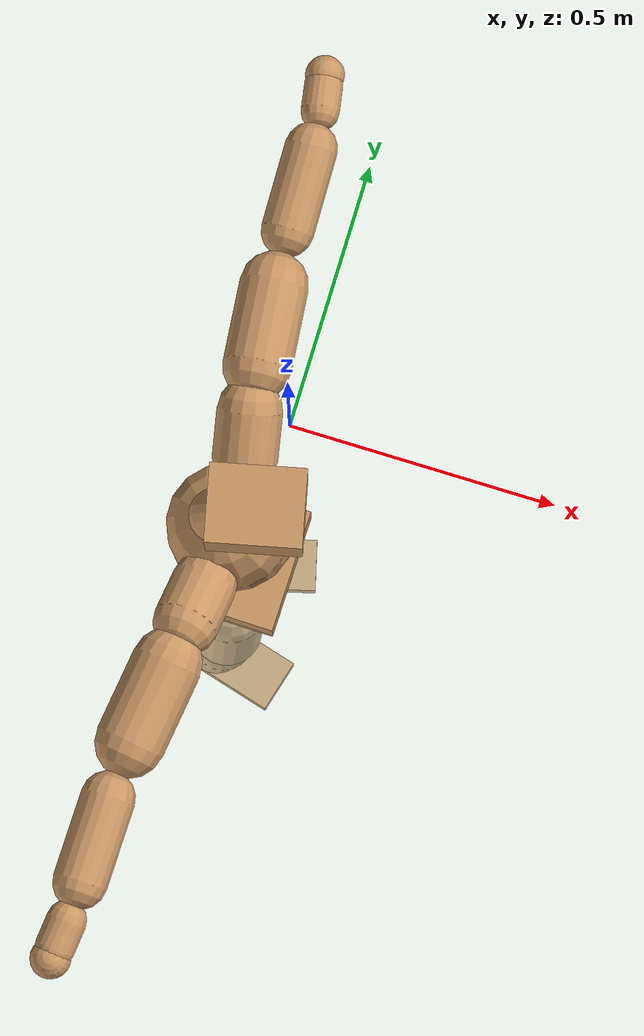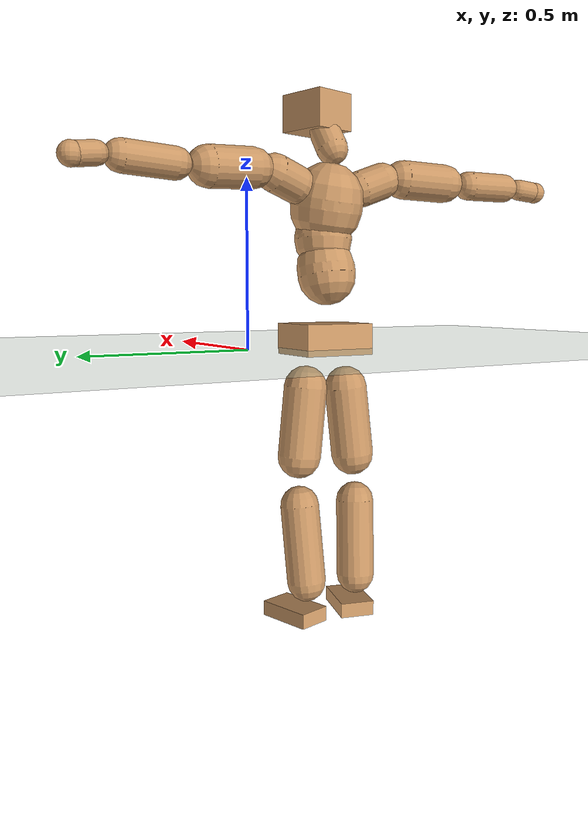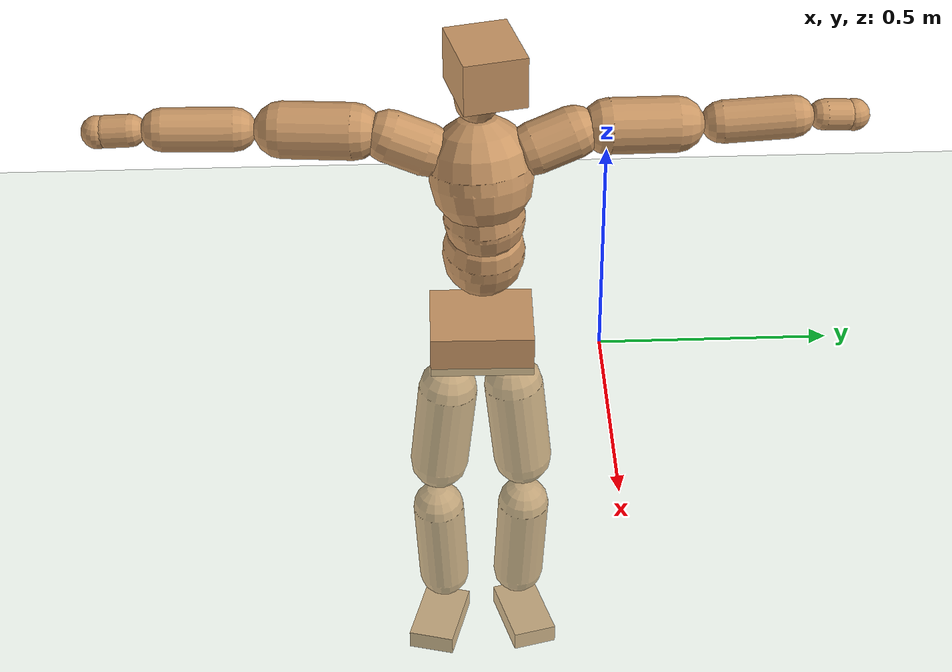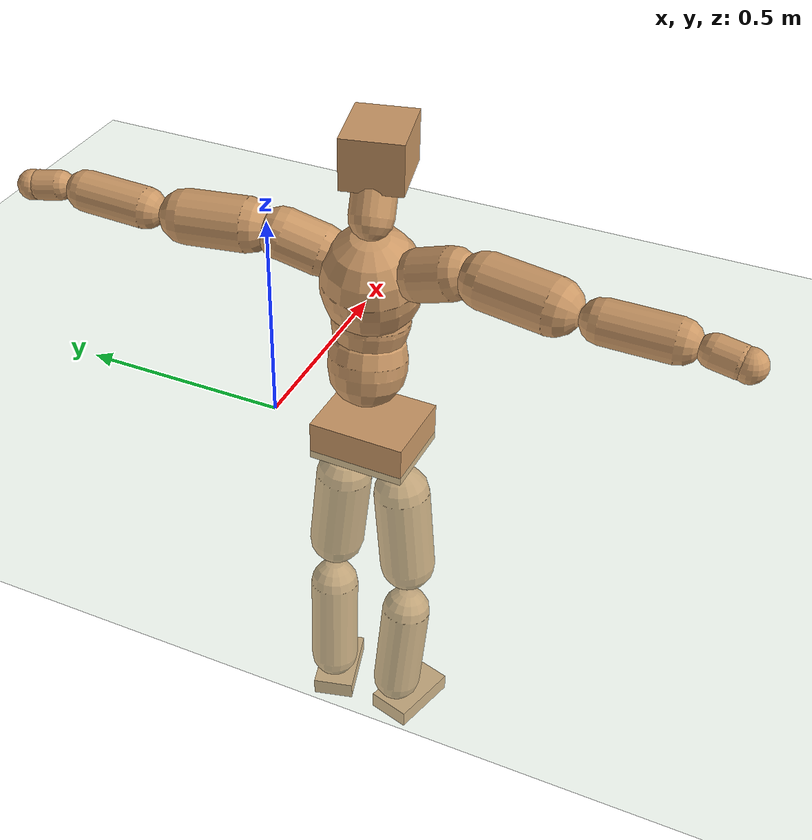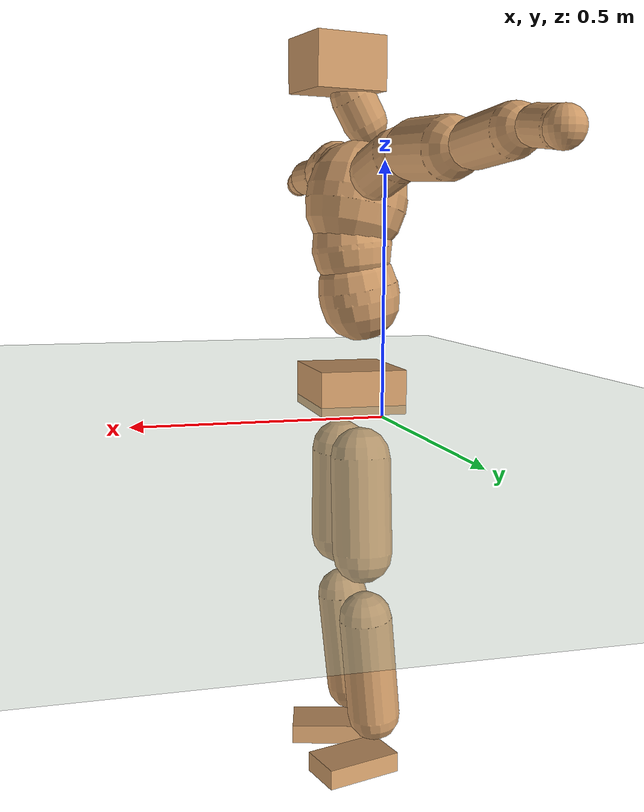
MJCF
<mujoco model="humanoid">
  <compiler coordinate="local" angle="radian"/>
  <default>
    <joint damping="0.0" armature="0.01" stiffness="0.0" limited="true"/>
    <geom conaffinity="1" condim="3" contype="7" margin="0.001" rgba="0.8 0.6 .4 1"/>
  </default>
  <asset>
    <texture type="skybox" builtin="gradient" rgb1=".4 .5 .6" rgb2="0 0 0" width="100" height="100"/>
    <texture builtin="flat" height="1278" mark="cross" markrgb="1 1 1" name="texgeom" random="0.01" rgb1="0.8 0.6 0.4" rgb2="0.8 0.6 0.4" type="cube" width="127"/>
    <texture builtin="checker" height="100" name="texplane" rgb1="0 0 0" rgb2="0.8 0.8 0.8" type="2d" width="100"/>
    <material name="MatPlane" reflectance="0.5" shininess="1" specular="1" texrepeat="60 60" texture="texplane"/>
    <material name="geom" texture="texgeom" texuniform="true"/>
  </asset>
  <worldbody>
    <light cutoff="100" diffuse="1 1 1" dir="-0 0 -1.3" directional="true" exponent="1" pos="0 0 1.3" specular=".1 .1 .1"/>
    <geom conaffinity="1" condim="3" name="floor" pos="0 0 0" rgba="0.8 0.9 0.8 1" size="100 100 .2" type="plane" material="MatPlane"/>
    <body name="Pelvis" pos="0.0004 -0.2593 0.0342">
      <freejoint name="Pelvis"/>
      <geom type="box" contype="1" conaffinity="1" density="500" pos="-0.0116 0.0002 -0.0079" size="0.0942 0.1128 0.0476" quat="1.0000 0.0000 0.0000 -0.0087" name="Pelvis"/>
      <body name="L_Hip" pos="-0.0153 0.0648 -0.0837">
        <joint name="L_Hip_x" type="hinge" pos="0 0 0" axis="1 0 0" stiffness="800" damping="80" armature="0.02" range="-180.0000 180.0000"/>
        <joint name="L_Hip_y" type="hinge" pos="0 0 0" axis="0 1 0" stiffness="800" damping="80" armature="0.02" range="-180.0000 180.0000"/>
        <joint name="L_Hip_z" type="hinge" pos="0 0 0" axis="0 0 1" stiffness="800" damping="80" armature="0.02" range="-180.0000 180.0000"/>
        <geom type="capsule" contype="1" conaffinity="1" density="500" fromto="0.0002 0.0073 -0.0707 0.0008 0.0292 -0.2829" size="0.0661" name="L_Hip"/>
        <body name="L_Knee" pos="0.001 0.0365 -0.3536">
          <joint name="L_Knee_x" type="hinge" pos="0 0 0" axis="1 0 0" stiffness="800" damping="80" armature="0.02" range="-180.0000 180.0000"/>
          <joint name="L_Knee_y" type="hinge" pos="0 0 0" axis="0 1 0" stiffness="800" damping="80" armature="0.02" range="-180.0000 180.0000"/>
          <joint name="L_Knee_z" type="hinge" pos="0 0 0" axis="0 0 1" stiffness="800" damping="80" armature="0.02" range="-180.0000 180.0000"/>
          <geom type="capsule" contype="1" conaffinity="1" density="500" fromto="-0.0082 -0.0032 -0.0780 -0.0329 -0.0126 -0.3121" size="0.0587" name="L_Knee"/>
          <body name="L_Ankle" pos="-0.0412 -0.0158 -0.3901">
            <joint name="L_Ankle_x" type="hinge" pos="0 0 0" axis="1 0 0" stiffness="800" damping="80" armature="0.02" range="-180.0000 180.0000"/>
            <joint name="L_Ankle_y" type="hinge" pos="0 0 0" axis="0 1 0" stiffness="800" damping="80" armature="0.02" range="-180.0000 180.0000"/>
            <joint name="L_Ankle_z" type="hinge" pos="0 0 0" axis="0 0 1" stiffness="800" damping="80" armature="0.02" range="-180.0000 180.0000"/>
            <geom type="box" contype="1" conaffinity="1" density="500" pos="0.0597 0.0156 -0.0279" size="0.0873 0.0502 0.0224" quat="0.9918 0.0000 0.0000 0.1277" name="L_Ankle"/>
            <body name="L_Toe" pos="0.1194 0.0313 -0.0558">
              <joint name="L_Toe_x" type="hinge" pos="0 0 0" axis="1 0 0" stiffness="500" damping="50" armature="0.02" range="-180.0000 180.0000"/>
              <joint name="L_Toe_y" type="hinge" pos="0 0 0" axis="0 1 0" stiffness="500" damping="50" armature="0.02" range="-180.0000 180.0000"/>
              <joint name="L_Toe_z" type="hinge" pos="0 0 0" axis="0 0 1" stiffness="500" damping="50" armature="0.02" range="-180.0000 180.0000"/>
              <geom type="box" contype="1" conaffinity="1" density="500" pos="0.0000 0.0000 0.0278" size="0.001 0.0025 0.0011" quat="0.9911 0.0000 0.0000 0.1333" name="L_Toe"/>
            </body>
          </body>
        </body>
      </body>
      <body name="R_Hip" pos="-0.0113 -0.0677 -0.0911">
        <joint name="R_Hip_x" type="hinge" pos="0 0 0" axis="1 0 0" stiffness="800" damping="80" armature="0.02" range="-180.0000 180.0000"/>
        <joint name="R_Hip_y" type="hinge" pos="0 0 0" axis="0 1 0" stiffness="800" damping="80" armature="0.02" range="-180.0000 180.0000"/>
        <joint name="R_Hip_z" type="hinge" pos="0 0 0" axis="0 0 1" stiffness="800" damping="80" armature="0.02" range="-180.0000 180.0000"/>
        <geom type="capsule" contype="1" conaffinity="1" density="500" fromto="-0.0017 -0.0074 -0.0712 -0.0069 -0.0294 -0.2848" size="0.0659" name="R_Hip"/>
        <body name="R_Knee" pos="-0.0086 -0.0368 -0.356">
          <joint name="R_Knee_x" type="hinge" pos="0 0 0" axis="1 0 0" stiffness="800" damping="80" armature="0.02" range="-180.0000 180.0000"/>
          <joint name="R_Knee_y" type="hinge" pos="0 0 0" axis="0 1 0" stiffness="800" damping="80" armature="0.02" range="-180.0000 180.0000"/>
          <joint name="R_Knee_z" type="hinge" pos="0 0 0" axis="0 0 1" stiffness="800" damping="80" armature="0.02" range="-180.0000 180.0000"/>
          <geom type="capsule" contype="1" conaffinity="1" density="500" fromto="-0.0074 0.0038 -0.0771 -0.0295 0.0153 -0.3085" size="0.0585" name="R_Knee"/>
          <body name="R_Ankle" pos="-0.0369 0.0191 -0.3857">
            <joint name="R_Ankle_x" type="hinge" pos="0 0 0" axis="1 0 0" stiffness="800" damping="80" armature="0.02" range="-180.0000 180.0000"/>
            <joint name="R_Ankle_y" type="hinge" pos="0 0 0" axis="0 1 0" stiffness="800" damping="80" armature="0.02" range="-180.0000 180.0000"/>
            <joint name="R_Ankle_z" type="hinge" pos="0 0 0" axis="0 0 1" stiffness="800" damping="80" armature="0.02" range="-180.0000 180.0000"/>
            <geom type="box" contype="1" conaffinity="1" density="500" pos="0.0626 -0.0174 -0.0297" size="0.086 0.0526 0.0223" quat="0.9908 0.0000 0.0000 -0.1355" name="R_Ankle"/>
            <body name="R_Toe" pos="0.1252 -0.0349 -0.0594">
              <joint name="R_Toe_x" type="hinge" pos="0 0 0" axis="1 0 0" stiffness="500" damping="50" armature="0.02" range="-180.0000 180.0000"/>
              <joint name="R_Toe_y" type="hinge" pos="0 0 0" axis="0 1 0" stiffness="500" damping="50" armature="0.02" range="-180.0000 180.0000"/>
              <joint name="R_Toe_z" type="hinge" pos="0 0 0" axis="0 0 1" stiffness="500" damping="50" armature="0.02" range="-180.0000 180.0000"/>
              <geom type="box" contype="1" conaffinity="1" density="500" pos="0.0000 0.0000 0.0297" size="0.0012 0.0026 0.0011" quat="0.9920 0.0000 0.0000 -0.1262" name="R_Toe"/>
            </body>
          </body>
        </body>
      </body>
      <body name="Torso" pos="-0.0428 0.004 0.1272">
        <joint name="Torso_x" type="hinge" pos="0 0 0" axis="1 0 0" stiffness="1000" damping="100" armature="0.02" range="-180.0000 180.0000"/>
        <joint name="Torso_y" type="hinge" pos="0 0 0" axis="0 1 0" stiffness="1000" damping="100" armature="0.02" range="-180.0000 180.0000"/>
        <joint name="Torso_z" type="hinge" pos="0 0 0" axis="0 0 1" stiffness="1000" damping="100" armature="0.02" range="-180.0000 180.0000"/>
        <geom type="capsule" contype="1" conaffinity="1" density="500" fromto="0.0167 0.0026 0.0849 0.0111 0.0018 0.0566" size="0.0886" name="Torso"/>
        <body name="Spine" pos="0.0278 0.0044 0.1414">
          <joint name="Spine_x" type="hinge" pos="0 0 0" axis="1 0 0" stiffness="1000" damping="100" armature="0.02" range="-180.0000 180.0000"/>
          <joint name="Spine_y" type="hinge" pos="0 0 0" axis="0 1 0" stiffness="1000" damping="100" armature="0.02" range="-180.0000 180.0000"/>
          <joint name="Spine_z" type="hinge" pos="0 0 0" axis="0 0 1" stiffness="1000" damping="100" armature="0.02" range="-180.0000 180.0000"/>
          <geom type="capsule" contype="1" conaffinity="1" density="500" fromto="0.0037 -0.0017 0.0346 0.0025 -0.0011 0.0231" size="0.0875" name="Spine"/>
          <body name="Chest" pos="0.0062 -0.0029 0.0577">
            <joint name="Chest_x" type="hinge" pos="0 0 0" axis="1 0 0" stiffness="1000" damping="100" armature="0.02" range="-180.0000 180.0000"/>
            <joint name="Chest_y" type="hinge" pos="0 0 0" axis="0 1 0" stiffness="1000" damping="100" armature="0.02" range="-180.0000 180.0000"/>
            <joint name="Chest_z" type="hinge" pos="0 0 0" axis="0 0 1" stiffness="1000" damping="100" armature="0.02" range="-180.0000 180.0000"/>
            <geom type="capsule" contype="1" conaffinity="1" density="500" fromto="-0.0176 -0.0055 0.0904 -0.0117 -0.0037 0.0603" size="0.1104" name="Chest"/>
            <body name="Neck" pos="-0.0448 -0.0143 0.2198">
              <joint name="Neck_x" type="hinge" pos="0 0 0" axis="1 0 0" stiffness="500" damping="50" armature="0.02" range="-180.0000 180.0000"/>
              <joint name="Neck_y" type="hinge" pos="0 0 0" axis="0 1 0" stiffness="500" damping="50" armature="0.02" range="-180.0000 180.0000"/>
              <joint name="Neck_z" type="hinge" pos="0 0 0" axis="0 0 1" stiffness="500" damping="50" armature="0.02" range="-180.0000 180.0000"/>
              <geom type="capsule" contype="1" conaffinity="1" density="500" fromto="0.0101 0.0020 0.0175 0.0406 0.0081 0.0700" size="0.048" name="Neck"/>
              <body name="Head" pos="0.0507 0.0101 0.0875">
                <joint name="Head_x" type="hinge" pos="0 0 0" axis="1 0 0" stiffness="500" damping="50" armature="0.02" range="-180.0000 180.0000"/>
                <joint name="Head_y" type="hinge" pos="0 0 0" axis="0 1 0" stiffness="500" damping="50" armature="0.02" range="-180.0000 180.0000"/>
                <joint name="Head_z" type="hinge" pos="0 0 0" axis="0 0 1" stiffness="500" damping="50" armature="0.02" range="-180.0000 180.0000"/>
                <geom type="box" contype="1" conaffinity="1" density="500" pos="0.0263 0.0060 0.0448" size="0.0815 0.0671 0.0564" quat="0.9937 0.0000 0.0000 0.1124" name="Head"/>
              </body>
            </body>
            <body name="L_Thorax" pos="-0.0186 0.0794 0.1166">
              <joint name="L_Thorax_x" type="hinge" pos="0 0 0" axis="1 0 0" stiffness="500" damping="50" armature="0.02" range="-180.0000 180.0000"/>
              <joint name="L_Thorax_y" type="hinge" pos="0 0 0" axis="0 1 0" stiffness="500" damping="50" armature="0.02" range="-180.0000 180.0000"/>
              <joint name="L_Thorax_z" type="hinge" pos="0 0 0" axis="0 0 1" stiffness="500" damping="50" armature="0.02" range="-180.0000 180.0000"/>
              <geom type="capsule" contype="1" conaffinity="1" density="500" fromto="-0.0051 0.0271 0.0090 -0.0205 0.1084 0.0361" size="0.0568" name="L_Thorax"/>
              <body name="L_Shoulder" pos="-0.0257 0.1355 0.0452">
                <joint name="L_Shoulder_x" type="hinge" pos="0 0 0" axis="1 0 0" stiffness="500" damping="50" armature="0.02" range="-720.0000 720.0000"/>
                <joint name="L_Shoulder_y" type="hinge" pos="0 0 0" axis="0 1 0" stiffness="500" damping="50" armature="0.02" range="-720.0000 720.0000"/>
                <joint name="L_Shoulder_z" type="hinge" pos="0 0 0" axis="0 0 1" stiffness="500" damping="50" armature="0.02" range="-720.0000 720.0000"/>
                <geom type="capsule" contype="1" conaffinity="1" density="500" fromto="-0.0046 0.0476 -0.0025 -0.0186 0.1906 -0.0101" size="0.0599" name="L_Shoulder"/>
                <body name="L_Elbow" pos="-0.0232 0.2382 -0.0127">
                  <joint name="L_Elbow_x" type="hinge" pos="0 0 0" axis="1 0 0" stiffness="500" damping="50" armature="0.02" range="-720.0000 720.0000"/>
                  <joint name="L_Elbow_y" type="hinge" pos="0 0 0" axis="0 1 0" stiffness="500" damping="50" armature="0.02" range="-720.0000 720.0000"/>
                  <joint name="L_Elbow_z" type="hinge" pos="0 0 0" axis="0 0 1" stiffness="500" damping="50" armature="0.02" range="-720.0000 720.0000"/>
                  <geom type="capsule" contype="1" conaffinity="1" density="500" fromto="-0.0010 0.0495 0.0025 -0.0039 0.1980 0.0100" size="0.0458" name="L_Elbow"/>
                  <body name="L_Wrist" pos="-0.0049 0.2475 0.0125">
                    <joint name="L_Wrist_x" type="hinge" pos="0 0 0" axis="1 0 0" stiffness="300" damping="30" armature="0.02" range="-180.0000 180.0000"/>
                    <joint name="L_Wrist_y" type="hinge" pos="0 0 0" axis="0 1 0" stiffness="300" damping="30" armature="0.02" range="-180.0000 180.0000"/>
                    <joint name="L_Wrist_z" type="hinge" pos="0 0 0" axis="0 0 1" stiffness="300" damping="30" armature="0.02" range="-180.0000 180.0000"/>
                    <geom type="capsule" contype="1" conaffinity="1" density="500" fromto="-0.0029 0.0165 -0.0021 -0.0114 0.0659 -0.0084" size="0.0334" name="L_Wrist"/>
                    <body name="L_Hand" pos="-0.0143 0.0824 -0.0104">
                      <joint name="L_Hand_x" type="hinge" pos="0 0 0" axis="1 0 0" stiffness="300" damping="30" armature="0.02" range="-180.0000 180.0000"/>
                      <joint name="L_Hand_y" type="hinge" pos="0 0 0" axis="0 1 0" stiffness="300" damping="30" armature="0.02" range="-180.0000 180.0000"/>
                      <joint name="L_Hand_z" type="hinge" pos="0 0 0" axis="0 0 1" stiffness="300" damping="30" armature="0.02" range="-180.0000 180.0000"/>
                      <geom type="sphere" contype="1" conaffinity="1" density="500" size="0.0342" pos="0.0000 0.0000 0.0000" name="L_Hand"/>
                    </body>
                  </body>
                </body>
              </body>
            </body>
            <body name="R_Thorax" pos="-0.0247 -0.0928 0.1158">
              <joint name="R_Thorax_x" type="hinge" pos="0 0 0" axis="1 0 0" stiffness="500" damping="50" armature="0.02" range="-180.0000 180.0000"/>
              <joint name="R_Thorax_y" type="hinge" pos="0 0 0" axis="0 1 0" stiffness="500" damping="50" armature="0.02" range="-180.0000 180.0000"/>
              <joint name="R_Thorax_z" type="hinge" pos="0 0 0" axis="0 0 1" stiffness="500" damping="50" armature="0.02" range="-180.0000 180.0000"/>
              <geom type="capsule" contype="1" conaffinity="1" density="500" fromto="-0.0027 -0.0251 0.0096 -0.0110 -0.1005 0.0385" size="0.0567" name="R_Thorax"/>
              <body name="R_Shoulder" pos="-0.0137 -0.1256 0.0481">
                <joint name="R_Shoulder_x" type="hinge" pos="0 0 0" axis="1 0 0" stiffness="500" damping="50" armature="0.02" range="-720.0000 720.0000"/>
                <joint name="R_Shoulder_y" type="hinge" pos="0 0 0" axis="0 1 0" stiffness="500" damping="50" armature="0.02" range="-720.0000 720.0000"/>
                <joint name="R_Shoulder_z" type="hinge" pos="0 0 0" axis="0 0 1" stiffness="500" damping="50" armature="0.02" range="-720.0000 720.0000"/>
                <geom type="capsule" contype="1" conaffinity="1" density="500" fromto="-0.0068 -0.0494 -0.0016 -0.0274 -0.1976 -0.0065" size="0.0607" name="R_Shoulder"/>
                <body name="R_Elbow" pos="-0.0342 -0.247 -0.0082">
                  <joint name="R_Elbow_x" type="hinge" pos="0 0 0" axis="1 0 0" stiffness="500" damping="50" armature="0.02" range="-720.0000 720.0000"/>
                  <joint name="R_Elbow_y" type="hinge" pos="0 0 0" axis="0 1 0" stiffness="500" damping="50" armature="0.02" range="-720.0000 720.0000"/>
                  <joint name="R_Elbow_z" type="hinge" pos="0 0 0" axis="0 0 1" stiffness="500" damping="50" armature="0.02" range="-720.0000 720.0000"/>
                  <geom type="capsule" contype="1" conaffinity="1" density="500" fromto="-0.0009 -0.0499 0.0004 -0.0036 -0.1995 0.0016" size="0.0468" name="R_Elbow"/>
                  <body name="R_Wrist" pos="-0.0045 -0.2494 0.002">
                    <joint name="R_Wrist_x" type="hinge" pos="0 0 0" axis="1 0 0" stiffness="300" damping="30" armature="0.02" range="-180.0000 180.0000"/>
                    <joint name="R_Wrist_y" type="hinge" pos="0 0 0" axis="0 1 0" stiffness="300" damping="30" armature="0.02" range="-180.0000 180.0000"/>
                    <joint name="R_Wrist_z" type="hinge" pos="0 0 0" axis="0 0 1" stiffness="300" damping="30" armature="0.02" range="-180.0000 180.0000"/>
                    <geom type="capsule" contype="1" conaffinity="1" density="500" fromto="-0.0018 -0.0172 -0.0017 -0.0074 -0.0688 -0.0069" size="0.0347" name="R_Wrist"/>
                    <body name="R_Hand" pos="-0.0092 -0.086 -0.0086">
                      <joint name="R_Hand_x" type="hinge" pos="0 0 0" axis="1 0 0" stiffness="300" damping="30" armature="0.02" range="-180.0000 180.0000"/>
                      <joint name="R_Hand_y" type="hinge" pos="0 0 0" axis="0 1 0" stiffness="300" damping="30" armature="0.02" range="-180.0000 180.0000"/>
                      <joint name="R_Hand_z" type="hinge" pos="0 0 0" axis="0 0 1" stiffness="300" damping="30" armature="0.02" range="-180.0000 180.0000"/>
                      <geom type="sphere" contype="1" conaffinity="1" density="500" size="0.0352" pos="0.0000 0.0000 0.0000" name="R_Hand"/>
                    </body>
                  </body>
                </body>
              </body>
            </body>
          </body>
        </body>
      </body>
    </body>
  </worldbody>
  <actuator>
    <motor name="L_Hip_x" joint="L_Hip_x" gear="500"/>
    <motor name="L_Hip_y" joint="L_Hip_y" gear="500"/>
    <motor name="L_Hip_z" joint="L_Hip_z" gear="500"/>
    <motor name="L_Knee_x" joint="L_Knee_x" gear="500"/>
    <motor name="L_Knee_y" joint="L_Knee_y" gear="500"/>
    <motor name="L_Knee_z" joint="L_Knee_z" gear="500"/>
    <motor name="L_Ankle_x" joint="L_Ankle_x" gear="500"/>
    <motor name="L_Ankle_y" joint="L_Ankle_y" gear="500"/>
    <motor name="L_Ankle_z" joint="L_Ankle_z" gear="500"/>
    <motor name="L_Toe_x" joint="L_Toe_x" gear="500"/>
    <motor name="L_Toe_y" joint="L_Toe_y" gear="500"/>
    <motor name="L_Toe_z" joint="L_Toe_z" gear="500"/>
    <motor name="R_Hip_x" joint="R_Hip_x" gear="500"/>
    <motor name="R_Hip_y" joint="R_Hip_y" gear="500"/>
    <motor name="R_Hip_z" joint="R_Hip_z" gear="500"/>
    <motor name="R_Knee_x" joint="R_Knee_x" gear="500"/>
    <motor name="R_Knee_y" joint="R_Knee_y" gear="500"/>
    <motor name="R_Knee_z" joint="R_Knee_z" gear="500"/>
    <motor name="R_Ankle_x" joint="R_Ankle_x" gear="500"/>
    <motor name="R_Ankle_y" joint="R_Ankle_y" gear="500"/>
    <motor name="R_Ankle_z" joint="R_Ankle_z" gear="500"/>
    <motor name="R_Toe_x" joint="R_Toe_x" gear="500"/>
    <motor name="R_Toe_y" joint="R_Toe_y" gear="500"/>
    <motor name="R_Toe_z" joint="R_Toe_z" gear="500"/>
    <motor name="Torso_x" joint="Torso_x" gear="500"/>
    <motor name="Torso_y" joint="Torso_y" gear="500"/>
    <motor name="Torso_z" joint="Torso_z" gear="500"/>
    <motor name="Spine_x" joint="Spine_x" gear="500"/>
    <motor name="Spine_y" joint="Spine_y" gear="500"/>
    <motor name="Spine_z" joint="Spine_z" gear="500"/>
    <motor name="Chest_x" joint="Chest_x" gear="500"/>
    <motor name="Chest_y" joint="Chest_y" gear="500"/>
    <motor name="Chest_z" joint="Chest_z" gear="500"/>
    <motor name="Neck_x" joint="Neck_x" gear="500"/>
    <motor name="Neck_y" joint="Neck_y" gear="500"/>
    <motor name="Neck_z" joint="Neck_z" gear="500"/>
    <motor name="Head_x" joint="Head_x" gear="500"/>
    <motor name="Head_y" joint="Head_y" gear="500"/>
    <motor name="Head_z" joint="Head_z" gear="500"/>
    <motor name="L_Thorax_x" joint="L_Thorax_x" gear="500"/>
    <motor name="L_Thorax_y" joint="L_Thorax_y" gear="500"/>
    <motor name="L_Thorax_z" joint="L_Thorax_z" gear="500"/>
    <motor name="L_Shoulder_x" joint="L_Shoulder_x" gear="500"/>
    <motor name="L_Shoulder_y" joint="L_Shoulder_y" gear="500"/>
    <motor name="L_Shoulder_z" joint="L_Shoulder_z" gear="500"/>
    <motor name="L_Elbow_x" joint="L_Elbow_x" gear="500"/>
    <motor name="L_Elbow_y" joint="L_Elbow_y" gear="500"/>
    <motor name="L_Elbow_z" joint="L_Elbow_z" gear="500"/>
    <motor name="L_Wrist_x" joint="L_Wrist_x" gear="500"/>
    <motor name="L_Wrist_y" joint="L_Wrist_y" gear="500"/>
    <motor name="L_Wrist_z" joint="L_Wrist_z" gear="500"/>
    <motor name="L_Hand_x" joint="L_Hand_x" gear="500"/>
    <motor name="L_Hand_y" joint="L_Hand_y" gear="500"/>
    <motor name="L_Hand_z" joint="L_Hand_z" gear="500"/>
    <motor name="R_Thorax_x" joint="R_Thorax_x" gear="500"/>
    <motor name="R_Thorax_y" joint="R_Thorax_y" gear="500"/>
    <motor name="R_Thorax_z" joint="R_Thorax_z" gear="500"/>
    <motor name="R_Shoulder_x" joint="R_Shoulder_x" gear="500"/>
    <motor name="R_Shoulder_y" joint="R_Shoulder_y" gear="500"/>
    <motor name="R_Shoulder_z" joint="R_Shoulder_z" gear="500"/>
    <motor name="R_Elbow_x" joint="R_Elbow_x" gear="500"/>
    <motor name="R_Elbow_y" joint="R_Elbow_y" gear="500"/>
    <motor name="R_Elbow_z" joint="R_Elbow_z" gear="500"/>
    <motor name="R_Wrist_x" joint="R_Wrist_x" gear="500"/>
    <motor name="R_Wrist_y" joint="R_Wrist_y" gear="500"/>
    <motor name="R_Wrist_z" joint="R_Wrist_z" gear="500"/>
    <motor name="R_Hand_x" joint="R_Hand_x" gear="500"/>
    <motor name="R_Hand_y" joint="R_Hand_y" gear="500"/>
    <motor name="R_Hand_z" joint="R_Hand_z" gear="500"/>
  </actuator>
  <contact>
    <exclude body1="Torso" body2="Chest"/>
    <exclude body1="Head" body2="Chest"/>
    <exclude body1="R_Knee" body2="R_Toe"/>
    <exclude body1="R_Knee" body2="L_Ankle"/>
    <exclude body1="R_Knee" body2="L_Toe"/>
    <exclude body1="L_Knee" body2="L_Toe"/>
    <exclude body1="L_Knee" body2="R_Ankle"/>
    <exclude body1="L_Knee" body2="R_Toe"/>
    <exclude body1="L_Shoulder" body2="Chest"/>
    <exclude body1="R_Shoulder" body2="Chest"/>
  </contact>
  <sensor/>
  <size njmax="700" nconmax="700"/>
</mujoco>
